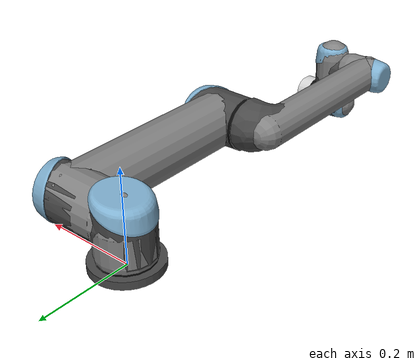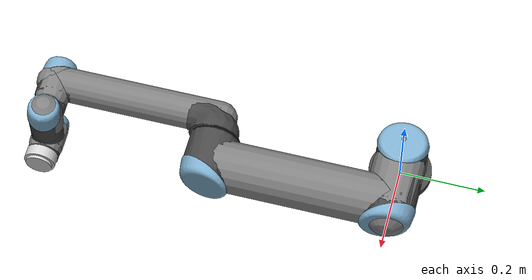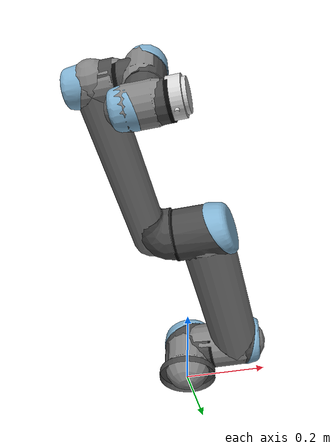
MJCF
<mujoco model="ur5_robot">
    <actuator>
        <!-- Physical limits of the actuator. -->
        <!-- Values taken from https://www.universal-robots.com/articles/ur-articles/max-joint-torques/ -->
        <motor ctrllimited="true" ctrlrange="-150.0 150.0" joint="ur5_joint1" name="torq_j1"/>
        <motor ctrllimited="true" ctrlrange="-150.0 150.0" joint="ur5_joint2" name="torq_j2"/>
        <motor ctrllimited="true" ctrlrange="-150.0 150.0" joint="ur5_joint3" name="torq_j3"/>
        <motor ctrllimited="true" ctrlrange="-28.0 28.0" joint="ur5_joint4" name="torq_j4"/>
        <motor ctrllimited="true" ctrlrange="-28.0 28.0" joint="ur5_joint5" name="torq_j5"/>
        <motor ctrllimited="true" ctrlrange="-28.0 28.0" joint="ur5_joint6" name="torq_j6"/>
    </actuator>
    <asset>
        <material name="UR5Black" specular="0.5" shininess="0.25" rgba="0.033 0.033 0.033 1"/>
        <material name="UR5JointGray" specular="0.5" shininess="0.25" rgba="0.278 0.278 0.278 1"/>
        <material name="UR5LinkGray" specular="0.5" shininess="0.25" rgba="0.82 0.82 0.82 1"/>
        <material name="UR5CapBlue" specular="0.5" shininess="0.25" rgba="0.49 0.678 0.8 1"/>

        <mesh name="ur5_base_0" file="meshes/ur5_base_0.stl"/>
        <mesh name="ur5_base_1" file="meshes/ur5_base_1.stl"/>

        <mesh name="ur5_shoulder_0" file="meshes/ur5_shoulder_0.stl"/>
        <mesh name="ur5_shoulder_1" file="meshes/ur5_shoulder_1.stl"/>
        <mesh name="ur5_shoulder_2" file="meshes/ur5_shoulder_2.stl"/>

        <mesh name="ur5_upperarm_0" file="meshes/ur5_upperarm_0.stl"/>
        <mesh name="ur5_upperarm_1" file="meshes/ur5_upperarm_1.stl"/>
        <mesh name="ur5_upperarm_2" file="meshes/ur5_upperarm_2.stl"/>
        <mesh name="ur5_upperarm_3" file="meshes/ur5_upperarm_3.stl"/>

        <mesh name="ur5_forearm_0" file="meshes/ur5_forearm_0.stl"/>
        <mesh name="ur5_forearm_1" file="meshes/ur5_forearm_1.stl"/>
        <mesh name="ur5_forearm_2" file="meshes/ur5_forearm_2.stl"/>
        <mesh name="ur5_forearm_3" file="meshes/ur5_forearm_3.stl"/>

        <mesh name="ur5_wrist1_0" file="meshes/ur5_wrist1_0.stl"/>
        <mesh name="ur5_wrist1_1" file="meshes/ur5_wrist1_1.stl"/>
        <mesh name="ur5_wrist1_2" file="meshes/ur5_wrist1_2.stl"/>

        <mesh name="ur5_wrist2_0" file="meshes/ur5_wrist2_0.stl"/>
        <mesh name="ur5_wrist2_1" file="meshes/ur5_wrist2_1.stl"/>
        <mesh name="ur5_wrist2_2" file="meshes/ur5_wrist2_2.stl"/>
        <mesh name="ur5_wrist3" file="meshes/ur5_wrist3.stl"/>
    </asset>

    <worldbody>
        <body name="ur5_base" quat="0.707 0 0 -0.707">
            <!-- robot view -->
            <camera mode="fixed" name="robotview" pos="1.0 0 0.4" quat="0.653 0.271 0.271 0.653"/>
            <inertial diaginertia="0 0 0" mass="0" pos="0 0 0"/>
            <!-- mount attached here -->
            <geom mesh="ur5_base_0" material="UR5Black" type="mesh" contype="0" conaffinity="0" group="1"/>
            <geom mesh="ur5_base_1" material="UR5JointGray" type="mesh" contype="0" conaffinity="0" group="1"/>
            <geom type="capsule" size="0.06 0.03" pos="0 0 0.06"/>
            <body name="shoulder_link" pos="0 0 0.09159" quat="0 0 0 1">
                <inertial pos="0 0 0" mass="3.7" diaginertia="0.0149724 0.0149724 0.0104063"/>
                <joint name="ur5_joint1" limited="true" range="-6.28319 6.28319" damping="0.001" frictionloss="0.01"/>
                <geom quat="0 0 0 1" mesh="ur5_shoulder_0" material="UR5CapBlue" type="mesh" contype="0" conaffinity="0" group="1"/>
                <geom quat="0 0 0 1" mesh="ur5_shoulder_1" material="UR5JointGray" type="mesh" contype="0" conaffinity="0" group="1"/>
                <geom quat="0 0 0 1" mesh="ur5_shoulder_2" material="UR5Black" type="mesh" contype="0" conaffinity="0" group="1"/>
                <geom type="capsule" quat="0.707 0.707 0 0" size="0.06 0.06" pos="0 -0.09 0"/>
                <body name="upper_arm_link" pos="0 0.003 0" quat="0.707107 0.707107 0 0">
                    <inertial pos="-0.2125 0 0.136" quat="0.707107 0 0.707107 0" mass="8.393"
                              diaginertia="0.133886 0.133886 0.0151074"/>
                    <joint name="ur5_joint2" limited="true" range="-6.28319 6.28319" damping="0.001" frictionloss="0.01"/>
                    <geom pos="0 0 0.13585" quat="0.5 0.5 -0.5 -0.5" mesh="ur5_upperarm_0" material="UR5Black"
                          type="mesh" contype="0" conaffinity="0" group="1"/>
                    <geom pos="0 0 0.13585" quat="0.5 0.5 -0.5 -0.5" mesh="ur5_upperarm_1" material="UR5JointGray"
                          type="mesh" contype="0" conaffinity="0" group="1"/>
                    <geom pos="0 0 0.13585" quat="0.5 0.5 -0.5 -0.5" mesh="ur5_upperarm_2" material="UR5CapBlue"
                          type="mesh" contype="0" conaffinity="0" group="1"/>
                    <geom pos="0 0 0.13585" quat="0.5 0.5 -0.5 -0.5" mesh="ur5_upperarm_3" material="UR5LinkGray"
                          type="mesh" contype="0" conaffinity="0" group="1"/>
                    <geom type="capsule" pos="-0.2 0 0.13585" quat="0.5 0.5 -0.5 -0.5" size="0.06 0.2"/>
                    <body name="forearm_link" pos="-0.425 0 0">
                        <inertial pos="-0.196125 0 0.0165" quat="0.707107 0 0.707107 0" mass="2.275"
                                  diaginertia="0.0312168 0.0312168 0.004095"/>
                        <joint name="ur5_joint3" limited="true" range="-6.28319 6.28319" damping="0.001" frictionloss="0.01"/>
                        <geom pos="0 0 0.0165" quat="0.5 0.5 -0.5 -0.5" mesh="ur5_forearm_0" material="UR5Black"
                              type="mesh" contype="0" conaffinity="0" group="1"/>
                        <geom pos="0 0 0.0165" quat="0.5 0.5 -0.5 -0.5" mesh="ur5_forearm_1" material="UR5CapBlue"
                              type="mesh" contype="0" conaffinity="0" group="1"/>
                        <geom pos="0 0 0.0165" quat="0.5 0.5 -0.5 -0.5" mesh="ur5_forearm_2" material="UR5JointGray"
                              type="mesh" contype="0" conaffinity="0" group="1"/>
                        <geom pos="0 0 0.0165" quat="0.5 0.5 -0.5 -0.5" mesh="ur5_forearm_3" material="UR5LinkGray"
                              type="mesh" contype="0" conaffinity="0" group="1"/>
                        <geom type="capsule" pos="-0.2 0 0.0165" quat="0.5 0.5 -0.5 -0.5" size="0.04 0.2"/>
                        <body name="wrist_1_link" pos="-0.39225 0 0.10915">
                            <inertial pos="0 0 0" quat="0.5 0.5 -0.5 0.5" mass="1.219"
                                      diaginertia="0.0021942 0.00201389 0.00201389"/>
                            <joint name="ur5_joint4" limited="true" range="-6.28319 6.28319" damping="0.001" frictionloss="0.01"/>
                            <geom pos="0 0 -0.093" quat="0.707107 0.707107 0 0" mesh="ur5_wrist1_0"
                                  material="UR5CapBlue" type="mesh" contype="0" conaffinity="0" group="1"/>
                            <geom pos="0 0 -0.093" quat="0.707107 0.707107 0 0" mesh="ur5_wrist1_1"
                                  material="UR5JointGray" type="mesh" contype="0" conaffinity="0" group="1"/>
                            <geom pos="0 0 -0.093" quat="0.707107 0.707107 0 0" mesh="ur5_wrist1_2"
                                  material="UR5Black" type="mesh" contype="0" conaffinity="0" group="1"/>
                            <geom type="capsule" pos="0 0 -0.08" size="0.04 0.025"/>
                            <body name="wrist_2_link" pos="0 -0.09465 -1.9413e-11" quat="0.707107 0.707107 0 0">
                                <inertial pos="0 0 0" quat="0.5 0.5 -0.5 0.5" mass="1.219"
                                          diaginertia="0.0021942 0.00183104 0.00183104"/>
                                <joint name="ur5_joint5" limited="true" range="-6.28319 6.28319" damping="0.001" frictionloss="0.01"/>
                                <geom pos="0 0 -0.095" mesh="ur5_wrist2_0" material="UR5Black" type="mesh" contype="0" conaffinity="0" group="1"/>
                                <geom pos="0 0 -0.095" mesh="ur5_wrist2_1" material="UR5CapBlue" type="mesh" contype="0" conaffinity="0" group="1"/>
                                <geom pos="0 0 -0.095" mesh="ur5_wrist2_2" material="UR5JointGray" type="mesh" contype="0" conaffinity="0" group="1"/>
                                <geom type="capsule" pos="0 0 -0.09" size="0.04 0.025"/>
                                <body name="wrist_3_link" pos="0 0.0823 -1.688e-11" quat="0.707107 -0.707107 0 0">
                                    <inertial pos="2.41791e-06 6.11278e-05 0.0220526"
                                              quat="1 -0.000770182 0.000170278 -0.000438404" mass="0.386936"
                                              diaginertia="0.000802069 0.000759517 0.000188105"/>
                                    <joint name="ur5_joint6" limited="true" range="-6.28319 6.28319" damping="0.001" frictionloss="0.01"/>
                                    <geom pos="0 0 -0.0818" quat="0.707107 0.707107 0 0" material="UR5LinkGray"
                                          mesh="ur5_wrist3" type="mesh" contype="0" conaffinity="0" group="1"/>
                                    <geom type="capsule" pos="0 0 -0.0818" size="0.04 0.025"/>
                                    <body name="right_hand" pos="0 0 0" quat="0.707 0 0 0.707">
                                        <!-- This camera points out from the eef. -->
                                        <camera mode="fixed" name="eye_in_hand" pos="0.05 0 0"  fovy="75"/>
                                        <!-- To add gripper -->
                                    </body>
                                </body>
                            </body>
                        </body>
                    </body>
                </body>
            </body>
        </body>
    </worldbody>
</mujoco>
